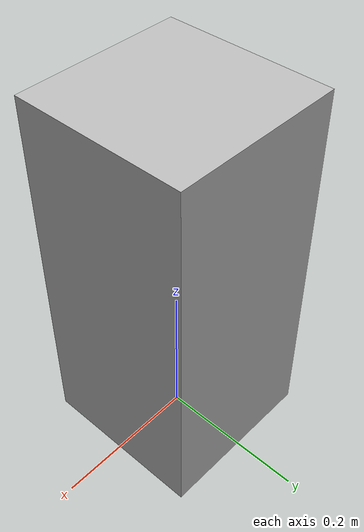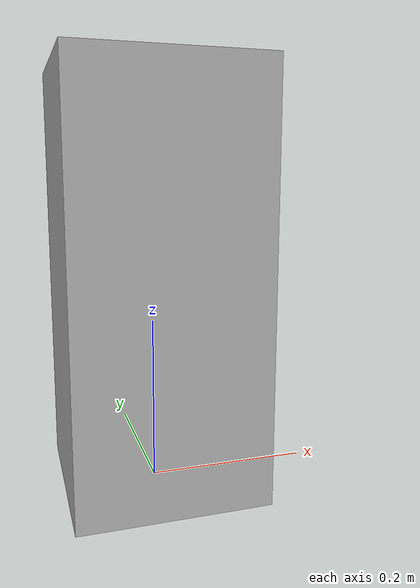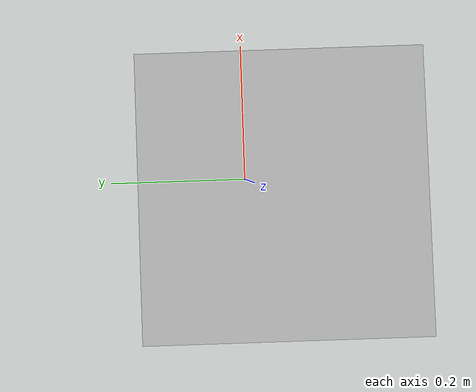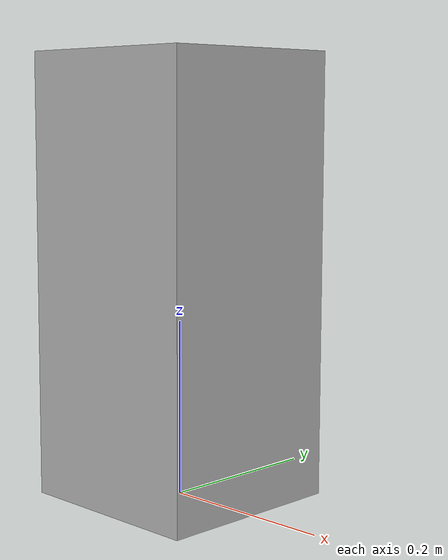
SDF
<?xml version="1.0" ?>
<sdf version="1.5">
  <model name="stand">
    <static>true</static>
    <link name="link">
      <collision name="surface">
        <pose>0 0 0.25 0 0 0</pose>
        <geometry>
          <box>
            <size>0.225 0.225 0.5</size>
          </box>
        </geometry>
        <surface>
          <friction>
            <ode>
              <mu>0.6</mu>
              <mu2>0.6</mu2>
            </ode>
          </friction>
        </surface>
        <drake:proximity_properties>
        <drake:compliant_hydroelastic/>
        <drake:hydroelastic_modulus>1.0e6</drake:hydroelastic_modulus>
      </drake:proximity_properties>
      </collision>
      <visual name="visual1">
        <pose>0 0 0.25 0 0 0</pose>
        <geometry>
          <box>
            <size>0.225 0.225 0.5</size>
          </box>
        </geometry>
      </visual>
    </link>
  </model>
</sdf>
